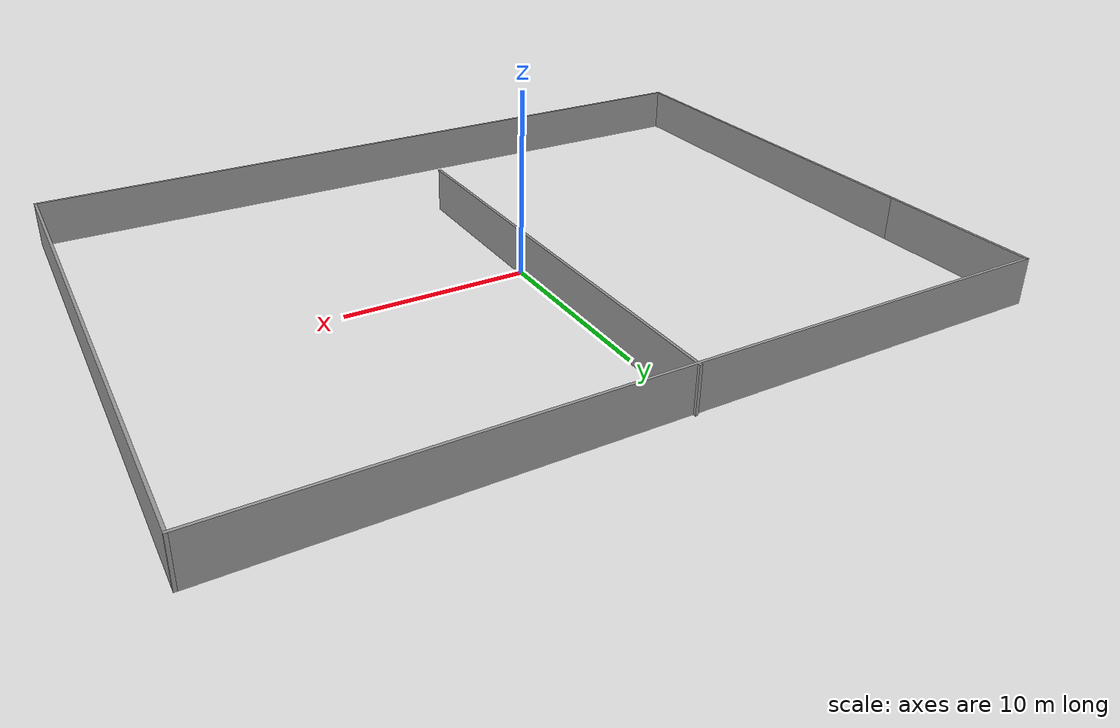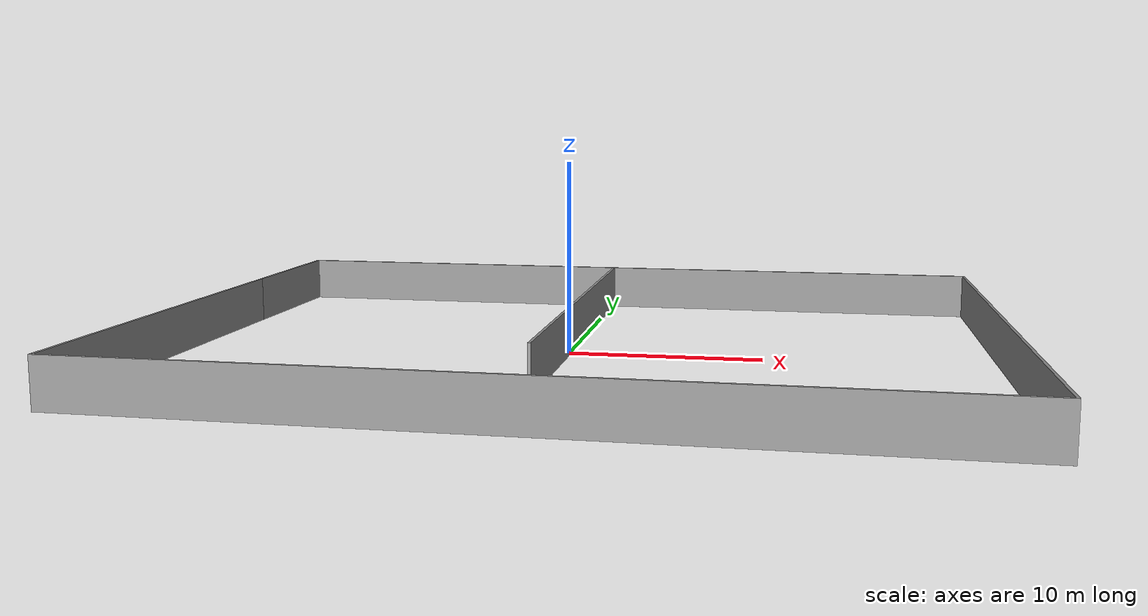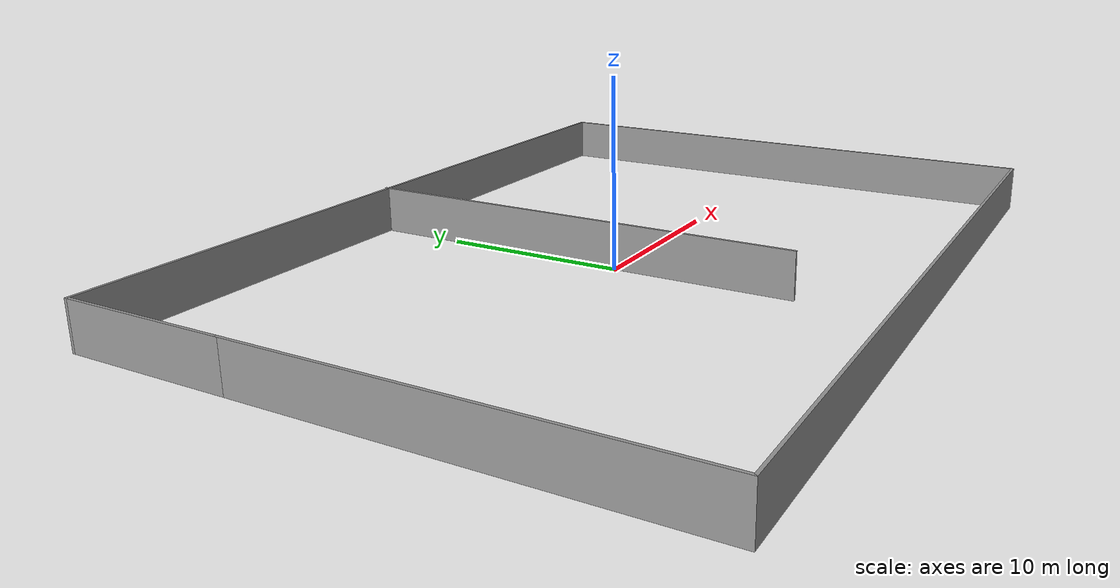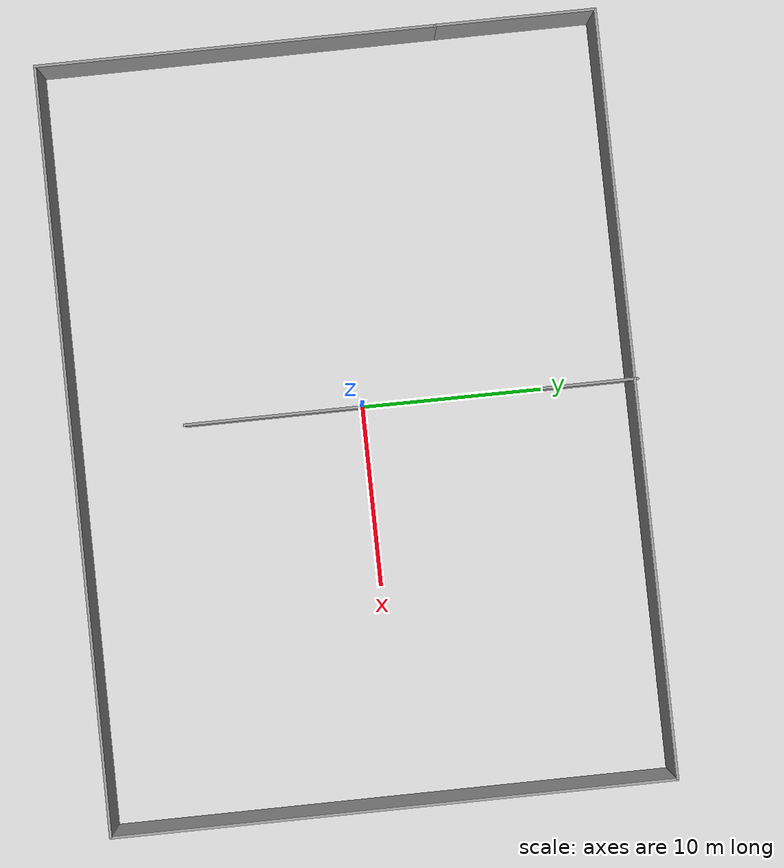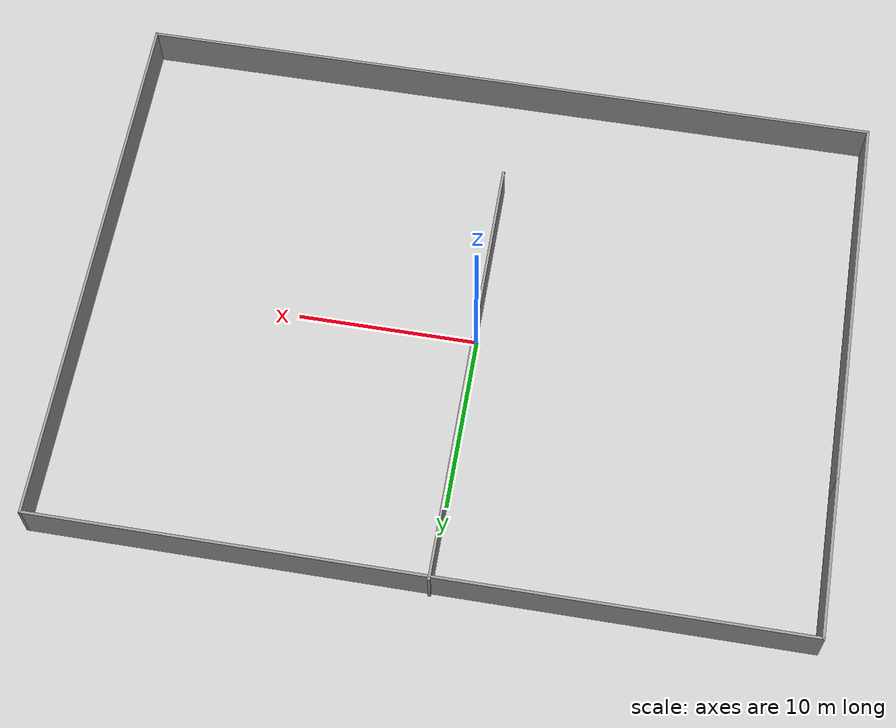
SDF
<?xml version='1.0'?>
<sdf version='1.6'>
  <model name='wall_indoor'>
    <pose frame=''>0.75893 -0.438896 0 0 -0 0</pose>
    <link name='Wall_77'>
      <collision name='Wall_77_Collision'>
        <geometry>
          <box>
            <size>22 0.15 2.5</size>
          </box>
        </geometry>
        <pose frame=''>0 0 1.25 0 -0 0</pose>
      </collision>
      <visual name='Wall_77_Visual'>
        <pose frame=''>0 0 1.25 0 -0 0</pose>
        <geometry>
          <box>
            <size>22 0.15 2.5</size>
          </box>
        </geometry>
        <material>
          <script>
            <uri>file://media/materials/scripts/gazebo.material</uri>
            <name>Gazebo/Grey</name>
          </script>
          <ambient>1 1 1 1</ambient>
        </material>
        <meta>
          <layer>0</layer>
        </meta>
      </visual>
      <pose frame=''>-20.925 -4.44856 0 0 0 -1.5708</pose>
    </link>
    <link name='Wall_78'>
      <collision name='Wall_78_Collision'>
        <geometry>
          <box>
            <size>42 0.15 2.5</size>
          </box>
        </geometry>
        <pose frame=''>0 0 1.25 0 -0 0</pose>
      </collision>
      <visual name='Wall_78_Visual'>
        <pose frame=''>0 0 1.25 0 -0 0</pose>
        <geometry>
          <box>
            <size>42 0.15 2.5</size>
          </box>
        </geometry>
        <material>
          <script>
            <uri>file://media/materials/scripts/gazebo.material</uri>
            <name>Gazebo/Grey</name>
          </script>
          <ambient>1 1 1 1</ambient>
        </material>
        <meta>
          <layer>0</layer>
        </meta>
      </visual>
      <pose frame=''>-1e-06 -15.3736 0 0 -0 0</pose>
    </link>
    <link name='Wall_79'>
      <collision name='Wall_79_Collision'>
        <geometry>
          <box>
            <size>30.75 0.15 2.5</size>
          </box>
        </geometry>
        <pose frame=''>0 0 1.25 0 -0 0</pose>
      </collision>
      <visual name='Wall_79_Visual'>
        <pose frame=''>0 0 1.25 0 -0 0</pose>
        <geometry>
          <box>
            <size>30.75 0.15 2.5</size>
          </box>
        </geometry>
        <material>
          <script>
            <uri>file://media/materials/scripts/gazebo.material</uri>
            <name>Gazebo/Grey</name>
          </script>
          <ambient>1 1 1 1</ambient>
        </material>
        <meta>
          <layer>0</layer>
        </meta>
      </visual>
      <pose frame=''>20.925 -0.073561 0 0 -0 1.5708</pose>
    </link>
    <link name='Wall_80'>
      <collision name='Wall_80_Collision'>
        <geometry>
          <box>
            <size>42 0.15 2.5</size>
          </box>
        </geometry>
        <pose frame=''>0 0 1.25 0 -0 0</pose>
      </collision>
      <visual name='Wall_80_Visual'>
        <pose frame=''>0 0 1.25 0 -0 0</pose>
        <geometry>
          <box>
            <size>42 0.15 2.5</size>
          </box>
        </geometry>
        <material>
          <script>
            <uri>file://media/materials/scripts/gazebo.material</uri>
            <name>Gazebo/Grey</name>
          </script>
          <ambient>1 1 1 1</ambient>
        </material>
        <meta>
          <layer>0</layer>
        </meta>
      </visual>
      <pose frame=''>-1e-06 15.2264 0 0 -0 3.14159</pose>
    </link>
    <link name='Wall_81'>
      <collision name='Wall_81_Collision'>
        <geometry>
          <box>
            <size>8.9 0.15 2.5</size>
          </box>
        </geometry>
        <pose frame=''>0 0 1.25 0 -0 0</pose>
      </collision>
      <visual name='Wall_81_Visual'>
        <pose frame=''>0 0 1.25 0 -0 0</pose>
        <geometry>
          <box>
            <size>8.9 0.15 2.5</size>
          </box>
        </geometry>
        <material>
          <script>
            <uri>file://media/materials/scripts/gazebo.material</uri>
            <name>Gazebo/Grey</name>
          </script>
          <ambient>1 1 1 1</ambient>
        </material>
        <meta>
          <layer>0</layer>
        </meta>
      </visual>
      <pose frame=''>-20.925 10.8514 0 0 0 -1.5708</pose>
    </link>
    <link name='Wall_83'>
      <collision name='Wall_83_Collision'>
        <geometry>
          <box>
            <size>24.75 0.15 2.5</size>
          </box>
        </geometry>
        <pose frame=''>0 0 1.25 0 -0 0</pose>
      </collision>
      <visual name='Wall_83_Visual'>
        <pose frame=''>0 0 1.25 0 -0 0</pose>
        <geometry>
          <box>
            <size>24.75 0.15 2.5</size>
          </box>
        </geometry>
        <material>
          <script>
            <uri>file://media/materials/scripts/gazebo.material</uri>
            <name>Gazebo/Grey</name>
          </script>
          <ambient>1 1 1 1</ambient>
        </material>
        <meta>
          <layer>0</layer>
        </meta>
      </visual>
      <pose frame=''>-0.714282 3.07356 0 0 0 -1.5708</pose>
    </link>
    <static>1</static>
  </model>
</sdf>
